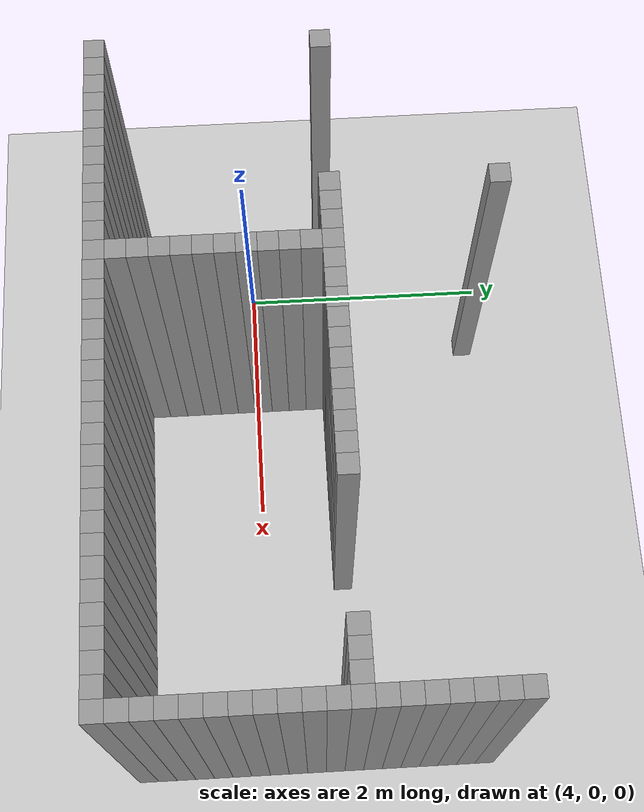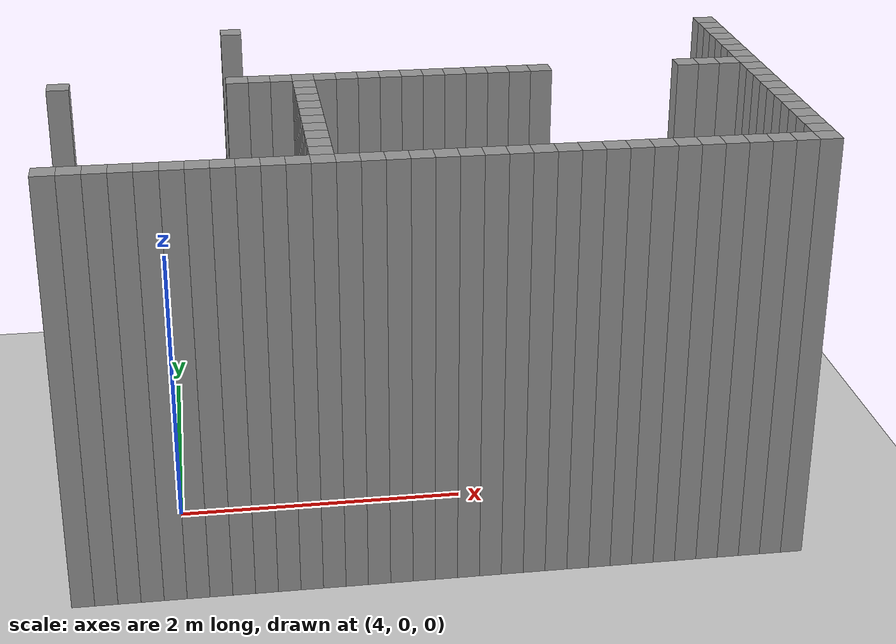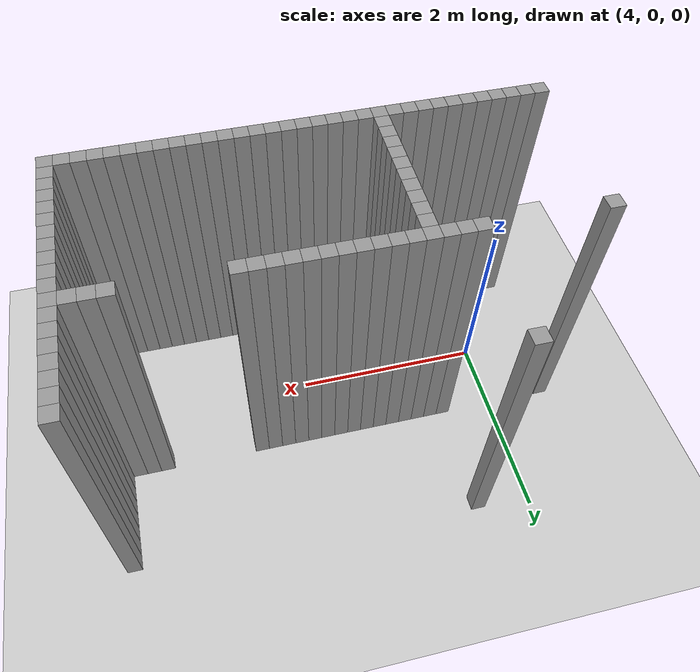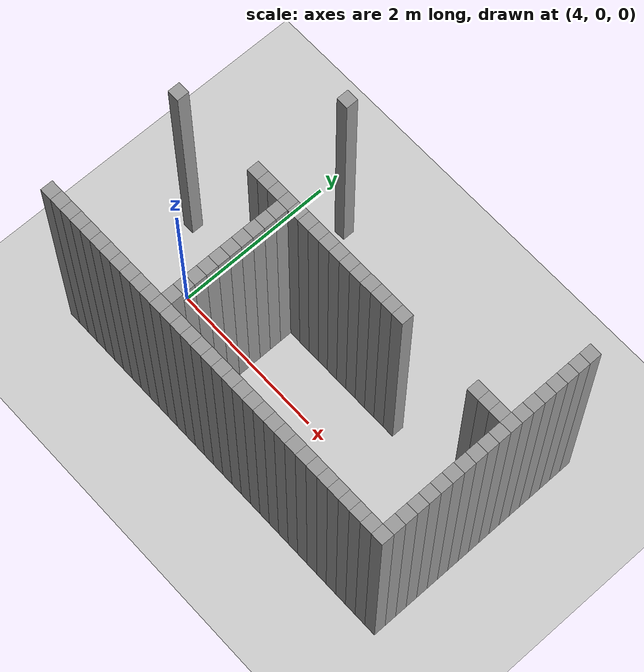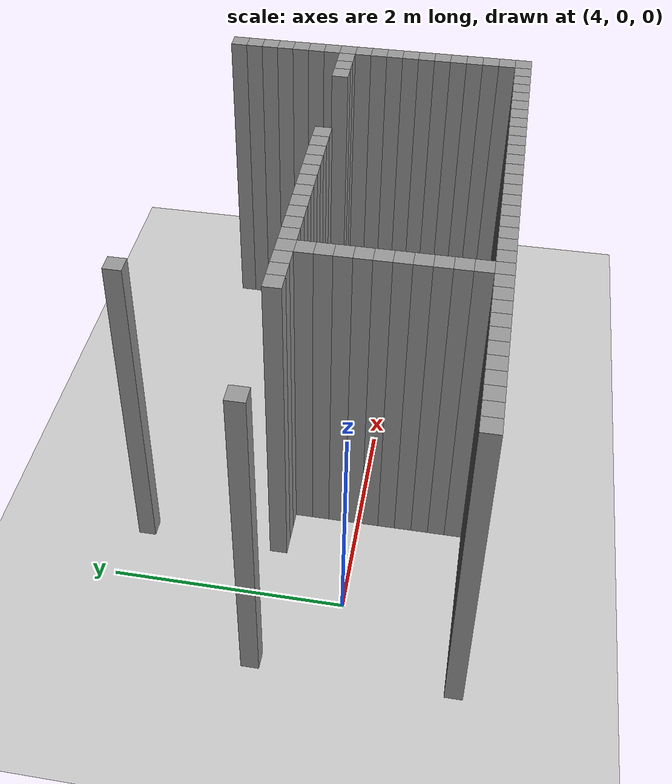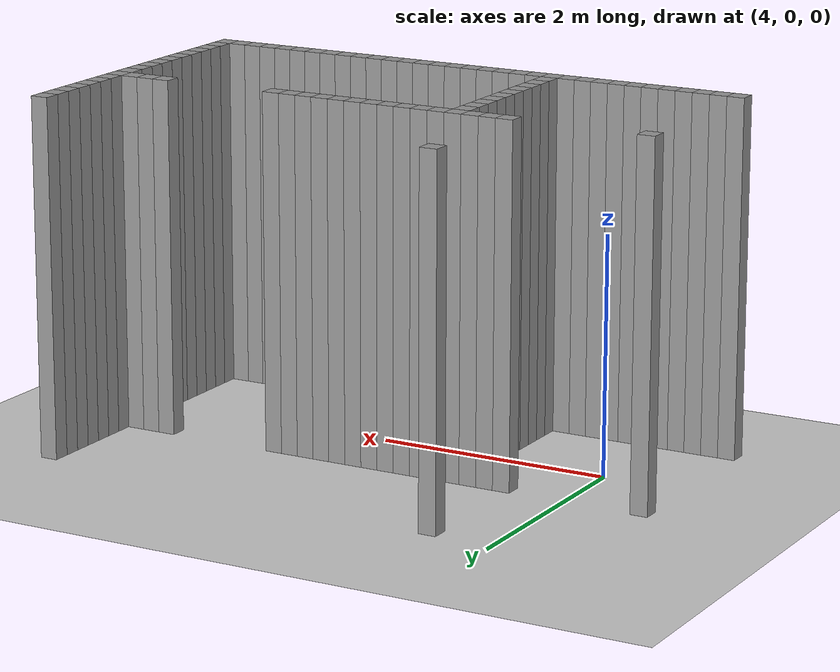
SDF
<sdf version="1.7">
 <world name="default">
  <model name="ground_plane">
   <static>1</static>
   <link name="link">
    <collision name="collision">
     <geometry><plane><normal>0 0 1</normal><size>100 100</size></plane></geometry>
     <surface>
      <contact><collide_bitmask>65535</collide_bitmask></contact>
      <friction><ode><mu>100</mu><mu2>50</mu2></ode></friction>
     </surface>
    </collision>
    <visual name="visual">
     <cast_shadows>0</cast_shadows>
     <geometry><plane><normal>0 0 1</normal><size>100 100</size></plane></geometry>
     <material>
      <script><uri>file://media/materials/scripts/gazebo.material</uri><name>Gazebo/Grey</name></script>
     </material>
    </visual>
   </link>
  </model>
  <model name="image45004">
   <pose>-1 -1 0 0 -0 0</pose>
   <link name="Wall_242">
    <collision name="Wall_242_Collision">
     <geometry><box><size>0.15 0.15 3</size></box></geometry>
     <pose>0 0 1.5 0 -0 0</pose>
    </collision>
    <visual name="Wall_242_Visual">
     <pose>0 0 1.5 0 -0 0</pose>
     <geometry><box><size>0.15 0.15 3</size></box></geometry>
     <material>
      <script><uri>file://media/materials/scripts/gazebo.material</uri><name>Gazebo/Grey</name></script>
      <ambient>1 1 1 1</ambient>
     </material>
     <meta><layer>0</layer></meta>
    </visual>
    <pose>4.35 0.0 0 0 -0 0</pose>
   </link>
   <link name="Wall_243">
    <collision name="Wall_243_Collision">
     <geometry><box><size>0.15 0.15 3</size></box></geometry>
     <pose>0 0 1.5 0 -0 0</pose>
    </collision>
    <visual name="Wall_243_Visual">
     <pose>0 0 1.5 0 -0 0</pose>
     <geometry><box><size>0.15 0.15 3</size></box></geometry>
     <material>
      <script><uri>file://media/materials/scripts/gazebo.material</uri><name>Gazebo/Grey</name></script>
      <ambient>1 1 1 1</ambient>
     </material>
     <meta><layer>0</layer></meta>
    </visual>
    <pose>4.35 1.65 0 0 -0 0</pose>
   </link>
   <link name="Wall_247">
    <collision name="Wall_247_Collision">
     <geometry><box><size>0.15 0.15 3</size></box></geometry>
     <pose>0 0 1.5 0 -0 0</pose>
    </collision>
    <visual name="Wall_247_Visual">
     <pose>0 0 1.5 0 -0 0</pose>
     <geometry><box><size>0.15 0.15 3</size></box></geometry>
     <material>
      <script><uri>file://media/materials/scripts/gazebo.material</uri><name>Gazebo/Grey</name></script>
      <ambient>1 1 1 1</ambient>
     </material>
     <meta><layer>0</layer></meta>
    </visual>
    <pose>4.5 0.0 0 0 -0 0</pose>
   </link>
   <link name="Wall_251">
    <collision name="Wall_251_Collision">
     <geometry><box><size>0.15 0.15 3</size></box></geometry>
     <pose>0 0 1.5 0 -0 0</pose>
    </collision>
    <visual name="Wall_251_Visual">
     <pose>0 0 1.5 0 -0 0</pose>
     <geometry><box><size>0.15 0.15 3</size></box></geometry>
     <material>
      <script><uri>file://media/materials/scripts/gazebo.material</uri><name>Gazebo/Grey</name></script>
      <ambient>1 1 1 1</ambient>
     </material>
     <meta><layer>0</layer></meta>
    </visual>
    <pose>4.6499999999999995 0.0 0 0 -0 0</pose>
   </link>
   <link name="Wall_254">
    <collision name="Wall_254_Collision">
     <geometry><box><size>0.15 0.15 3</size></box></geometry>
     <pose>0 0 1.5 0 -0 0</pose>
    </collision>
    <visual name="Wall_254_Visual">
     <pose>0 0 1.5 0 -0 0</pose>
     <geometry><box><size>0.15 0.15 3</size></box></geometry>
     <material>
      <script><uri>file://media/materials/scripts/gazebo.material</uri><name>Gazebo/Grey</name></script>
      <ambient>1 1 1 1</ambient>
     </material>
     <meta><layer>0</layer></meta>
    </visual>
    <pose>4.8 0.0 0 0 -0 0</pose>
   </link>
   <link name="Wall_257">
    <collision name="Wall_257_Collision">
     <geometry><box><size>0.15 0.15 3</size></box></geometry>
     <pose>0 0 1.5 0 -0 0</pose>
    </collision>
    <visual name="Wall_257_Visual">
     <pose>0 0 1.5 0 -0 0</pose>
     <geometry><box><size>0.15 0.15 3</size></box></geometry>
     <material>
      <script><uri>file://media/materials/scripts/gazebo.material</uri><name>Gazebo/Grey</name></script>
      <ambient>1 1 1 1</ambient>
     </material>
     <meta><layer>0</layer></meta>
    </visual>
    <pose>4.95 0.0 0 0 -0 0</pose>
   </link>
   <link name="Wall_260">
    <collision name="Wall_260_Collision">
     <geometry><box><size>0.15 0.15 3</size></box></geometry>
     <pose>0 0 1.5 0 -0 0</pose>
    </collision>
    <visual name="Wall_260_Visual">
     <pose>0 0 1.5 0 -0 0</pose>
     <geometry><box><size>0.15 0.15 3</size></box></geometry>
     <material>
      <script><uri>file://media/materials/scripts/gazebo.material</uri><name>Gazebo/Grey</name></script>
      <ambient>1 1 1 1</ambient>
     </material>
     <meta><layer>0</layer></meta>
    </visual>
    <pose>5.1 0.0 0 0 -0 0</pose>
   </link>
   <link name="Wall_263">
    <collision name="Wall_263_Collision">
     <geometry><box><size>0.15 0.15 3</size></box></geometry>
     <pose>0 0 1.5 0 -0 0</pose>
    </collision>
    <visual name="Wall_263_Visual">
     <pose>0 0 1.5 0 -0 0</pose>
     <geometry><box><size>0.15 0.15 3</size></box></geometry>
     <material>
      <script><uri>file://media/materials/scripts/gazebo.material</uri><name>Gazebo/Grey</name></script>
      <ambient>1 1 1 1</ambient>
     </material>
     <meta><layer>0</layer></meta>
    </visual>
    <pose>5.25 0.0 0 0 -0 0</pose>
   </link>
   <link name="Wall_266">
    <collision name="Wall_266_Collision">
     <geometry><box><size>0.15 0.15 3</size></box></geometry>
     <pose>0 0 1.5 0 -0 0</pose>
    </collision>
    <visual name="Wall_266_Visual">
     <pose>0 0 1.5 0 -0 0</pose>
     <geometry><box><size>0.15 0.15 3</size></box></geometry>
     <material>
      <script><uri>file://media/materials/scripts/gazebo.material</uri><name>Gazebo/Grey</name></script>
      <ambient>1 1 1 1</ambient>
     </material>
     <meta><layer>0</layer></meta>
    </visual>
    <pose>5.3999999999999995 0.0 0 0 -0 0</pose>
   </link>
   <link name="Wall_269">
    <collision name="Wall_269_Collision">
     <geometry><box><size>0.15 0.15 3</size></box></geometry>
     <pose>0 0 1.5 0 -0 0</pose>
    </collision>
    <visual name="Wall_269_Visual">
     <pose>0 0 1.5 0 -0 0</pose>
     <geometry><box><size>0.15 0.15 3</size></box></geometry>
     <material>
      <script><uri>file://media/materials/scripts/gazebo.material</uri><name>Gazebo/Grey</name></script>
      <ambient>1 1 1 1</ambient>
     </material>
     <meta><layer>0</layer></meta>
    </visual>
    <pose>5.55 0.0 0 0 -0 0</pose>
   </link>
   <link name="Wall_270">
    <collision name="Wall_270_Collision">
     <geometry><box><size>0.15 0.15 3</size></box></geometry>
     <pose>0 0 1.5 0 -0 0</pose>
    </collision>
    <visual name="Wall_270_Visual">
     <pose>0 0 1.5 0 -0 0</pose>
     <geometry><box><size>0.15 0.15 3</size></box></geometry>
     <material>
      <script><uri>file://media/materials/scripts/gazebo.material</uri><name>Gazebo/Grey</name></script>
      <ambient>1 1 1 1</ambient>
     </material>
     <meta><layer>0</layer></meta>
    </visual>
    <pose>5.55 1.65 0 0 -0 0</pose>
   </link>
   <link name="Wall_271">
    <collision name="Wall_271_Collision">
     <geometry><box><size>0.15 0.15 3</size></box></geometry>
     <pose>0 0 1.5 0 -0 0</pose>
    </collision>
    <visual name="Wall_271_Visual">
     <pose>0 0 1.5 0 -0 0</pose>
     <geometry><box><size>0.15 0.15 3</size></box></geometry>
     <material>
      <script><uri>file://media/materials/scripts/gazebo.material</uri><name>Gazebo/Grey</name></script>
      <ambient>1 1 1 1</ambient>
     </material>
     <meta><layer>0</layer></meta>
    </visual>
    <pose>5.55 2.85 0 0 -0 0</pose>
   </link>
   <link name="Wall_274">
    <collision name="Wall_274_Collision">
     <geometry><box><size>0.15 0.15 3</size></box></geometry>
     <pose>0 0 1.5 0 -0 0</pose>
    </collision>
    <visual name="Wall_274_Visual">
     <pose>0 0 1.5 0 -0 0</pose>
     <geometry><box><size>0.15 0.15 3</size></box></geometry>
     <material>
      <script><uri>file://media/materials/scripts/gazebo.material</uri><name>Gazebo/Grey</name></script>
      <ambient>1 1 1 1</ambient>
     </material>
     <meta><layer>0</layer></meta>
    </visual>
    <pose>5.7 0.0 0 0 -0 0</pose>
   </link>
   <link name="Wall_275">
    <collision name="Wall_275_Collision">
     <geometry><box><size>0.15 0.15 3</size></box></geometry>
     <pose>0 0 1.5 0 -0 0</pose>
    </collision>
    <visual name="Wall_275_Visual">
     <pose>0 0 1.5 0 -0 0</pose>
     <geometry><box><size>0.15 0.15 3</size></box></geometry>
     <material>
      <script><uri>file://media/materials/scripts/gazebo.material</uri><name>Gazebo/Grey</name></script>
      <ambient>1 1 1 1</ambient>
     </material>
     <meta><layer>0</layer></meta>
    </visual>
    <pose>5.7 1.65 0 0 -0 0</pose>
   </link>
   <link name="Wall_280">
    <collision name="Wall_280_Collision">
     <geometry><box><size>0.15 0.15 3</size></box></geometry>
     <pose>0 0 1.5 0 -0 0</pose>
    </collision>
    <visual name="Wall_280_Visual">
     <pose>0 0 1.5 0 -0 0</pose>
     <geometry><box><size>0.15 0.15 3</size></box></geometry>
     <material>
      <script><uri>file://media/materials/scripts/gazebo.material</uri><name>Gazebo/Grey</name></script>
      <ambient>1 1 1 1</ambient>
     </material>
     <meta><layer>0</layer></meta>
    </visual>
    <pose>5.85 0.0 0 0 -0 0</pose>
   </link>
   <link name="Wall_281">
    <collision name="Wall_281_Collision">
     <geometry><box><size>0.15 0.15 3</size></box></geometry>
     <pose>0 0 1.5 0 -0 0</pose>
    </collision>
    <visual name="Wall_281_Visual">
     <pose>0 0 1.5 0 -0 0</pose>
     <geometry><box><size>0.15 0.15 3</size></box></geometry>
     <material>
      <script><uri>file://media/materials/scripts/gazebo.material</uri><name>Gazebo/Grey</name></script>
      <ambient>1 1 1 1</ambient>
     </material>
     <meta><layer>0</layer></meta>
    </visual>
    <pose>5.85 1.65 0 0 -0 0</pose>
   </link>
   <link name="Wall_295">
    <collision name="Wall_295_Collision">
     <geometry><box><size>0.15 0.15 3</size></box></geometry>
     <pose>0 0 1.5 0 -0 0</pose>
    </collision>
    <visual name="Wall_295_Visual">
     <pose>0 0 1.5 0 -0 0</pose>
     <geometry><box><size>0.15 0.15 3</size></box></geometry>
     <material>
      <script><uri>file://media/materials/scripts/gazebo.material</uri><name>Gazebo/Grey</name></script>
      <ambient>1 1 1 1</ambient>
     </material>
     <meta><layer>0</layer></meta>
    </visual>
    <pose>6.0 0.0 0 0 -0 0</pose>
   </link>
   <link name="Wall_296">
    <collision name="Wall_296_Collision">
     <geometry><box><size>0.15 0.15 3</size></box></geometry>
     <pose>0 0 1.5 0 -0 0</pose>
    </collision>
    <visual name="Wall_296_Visual">
     <pose>0 0 1.5 0 -0 0</pose>
     <geometry><box><size>0.15 0.15 3</size></box></geometry>
     <material>
      <script><uri>file://media/materials/scripts/gazebo.material</uri><name>Gazebo/Grey</name></script>
      <ambient>1 1 1 1</ambient>
     </material>
     <meta><layer>0</layer></meta>
    </visual>
    <pose>6.0 0.15 0 0 -0 0</pose>
   </link>
   <link name="Wall_297">
    <collision name="Wall_297_Collision">
     <geometry><box><size>0.15 0.15 3</size></box></geometry>
     <pose>0 0 1.5 0 -0 0</pose>
    </collision>
    <visual name="Wall_297_Visual">
     <pose>0 0 1.5 0 -0 0</pose>
     <geometry><box><size>0.15 0.15 3</size></box></geometry>
     <material>
      <script><uri>file://media/materials/scripts/gazebo.material</uri><name>Gazebo/Grey</name></script>
      <ambient>1 1 1 1</ambient>
     </material>
     <meta><layer>0</layer></meta>
    </visual>
    <pose>6.0 0.3 0 0 -0 0</pose>
   </link>
   <link name="Wall_298">
    <collision name="Wall_298_Collision">
     <geometry><box><size>0.15 0.15 3</size></box></geometry>
     <pose>0 0 1.5 0 -0 0</pose>
    </collision>
    <visual name="Wall_298_Visual">
     <pose>0 0 1.5 0 -0 0</pose>
     <geometry><box><size>0.15 0.15 3</size></box></geometry>
     <material>
      <script><uri>file://media/materials/scripts/gazebo.material</uri><name>Gazebo/Grey</name></script>
      <ambient>1 1 1 1</ambient>
     </material>
     <meta><layer>0</layer></meta>
    </visual>
    <pose>6.0 0.44999999999999996 0 0 -0 0</pose>
   </link>
   <link name="Wall_299">
    <collision name="Wall_299_Collision">
     <geometry><box><size>0.15 0.15 3</size></box></geometry>
     <pose>0 0 1.5 0 -0 0</pose>
    </collision>
    <visual name="Wall_299_Visual">
     <pose>0 0 1.5 0 -0 0</pose>
     <geometry><box><size>0.15 0.15 3</size></box></geometry>
     <material>
      <script><uri>file://media/materials/scripts/gazebo.material</uri><name>Gazebo/Grey</name></script>
      <ambient>1 1 1 1</ambient>
     </material>
     <meta><layer>0</layer></meta>
    </visual>
    <pose>6.0 0.6 0 0 -0 0</pose>
   </link>
   <link name="Wall_300">
    <collision name="Wall_300_Collision">
     <geometry><box><size>0.15 0.15 3</size></box></geometry>
     <pose>0 0 1.5 0 -0 0</pose>
    </collision>
    <visual name="Wall_300_Visual">
     <pose>0 0 1.5 0 -0 0</pose>
     <geometry><box><size>0.15 0.15 3</size></box></geometry>
     <material>
      <script><uri>file://media/materials/scripts/gazebo.material</uri><name>Gazebo/Grey</name></script>
      <ambient>1 1 1 1</ambient>
     </material>
     <meta><layer>0</layer></meta>
    </visual>
    <pose>6.0 0.75 0 0 -0 0</pose>
   </link>
   <link name="Wall_301">
    <collision name="Wall_301_Collision">
     <geometry><box><size>0.15 0.15 3</size></box></geometry>
     <pose>0 0 1.5 0 -0 0</pose>
    </collision>
    <visual name="Wall_301_Visual">
     <pose>0 0 1.5 0 -0 0</pose>
     <geometry><box><size>0.15 0.15 3</size></box></geometry>
     <material>
      <script><uri>file://media/materials/scripts/gazebo.material</uri><name>Gazebo/Grey</name></script>
      <ambient>1 1 1 1</ambient>
     </material>
     <meta><layer>0</layer></meta>
    </visual>
    <pose>6.0 0.8999999999999999 0 0 -0 0</pose>
   </link>
   <link name="Wall_302">
    <collision name="Wall_302_Collision">
     <geometry><box><size>0.15 0.15 3</size></box></geometry>
     <pose>0 0 1.5 0 -0 0</pose>
    </collision>
    <visual name="Wall_302_Visual">
     <pose>0 0 1.5 0 -0 0</pose>
     <geometry><box><size>0.15 0.15 3</size></box></geometry>
     <material>
      <script><uri>file://media/materials/scripts/gazebo.material</uri><name>Gazebo/Grey</name></script>
      <ambient>1 1 1 1</ambient>
     </material>
     <meta><layer>0</layer></meta>
    </visual>
    <pose>6.0 1.05 0 0 -0 0</pose>
   </link>
   <link name="Wall_303">
    <collision name="Wall_303_Collision">
     <geometry><box><size>0.15 0.15 3</size></box></geometry>
     <pose>0 0 1.5 0 -0 0</pose>
    </collision>
    <visual name="Wall_303_Visual">
     <pose>0 0 1.5 0 -0 0</pose>
     <geometry><box><size>0.15 0.15 3</size></box></geometry>
     <material>
      <script><uri>file://media/materials/scripts/gazebo.material</uri><name>Gazebo/Grey</name></script>
      <ambient>1 1 1 1</ambient>
     </material>
     <meta><layer>0</layer></meta>
    </visual>
    <pose>6.0 1.2 0 0 -0 0</pose>
   </link>
   <link name="Wall_304">
    <collision name="Wall_304_Collision">
     <geometry><box><size>0.15 0.15 3</size></box></geometry>
     <pose>0 0 1.5 0 -0 0</pose>
    </collision>
    <visual name="Wall_304_Visual">
     <pose>0 0 1.5 0 -0 0</pose>
     <geometry><box><size>0.15 0.15 3</size></box></geometry>
     <material>
      <script><uri>file://media/materials/scripts/gazebo.material</uri><name>Gazebo/Grey</name></script>
      <ambient>1 1 1 1</ambient>
     </material>
     <meta><layer>0</layer></meta>
    </visual>
    <pose>6.0 1.3499999999999999 0 0 -0 0</pose>
   </link>
   <link name="Wall_305">
    <collision name="Wall_305_Collision">
     <geometry><box><size>0.15 0.15 3</size></box></geometry>
     <pose>0 0 1.5 0 -0 0</pose>
    </collision>
    <visual name="Wall_305_Visual">
     <pose>0 0 1.5 0 -0 0</pose>
     <geometry><box><size>0.15 0.15 3</size></box></geometry>
     <material>
      <script><uri>file://media/materials/scripts/gazebo.material</uri><name>Gazebo/Grey</name></script>
      <ambient>1 1 1 1</ambient>
     </material>
     <meta><layer>0</layer></meta>
    </visual>
    <pose>6.0 1.5 0 0 -0 0</pose>
   </link>
   <link name="Wall_306">
    <collision name="Wall_306_Collision">
     <geometry><box><size>0.15 0.15 3</size></box></geometry>
     <pose>0 0 1.5 0 -0 0</pose>
    </collision>
    <visual name="Wall_306_Visual">
     <pose>0 0 1.5 0 -0 0</pose>
     <geometry><box><size>0.15 0.15 3</size></box></geometry>
     <material>
      <script><uri>file://media/materials/scripts/gazebo.material</uri><name>Gazebo/Grey</name></script>
      <ambient>1 1 1 1</ambient>
     </material>
     <meta><layer>0</layer></meta>
    </visual>
    <pose>6.0 1.65 0 0 -0 0</pose>
   </link>
   <link name="Wall_325">
    <collision name="Wall_325_Collision">
     <geometry><box><size>0.15 0.15 3</size></box></geometry>
     <pose>0 0 1.5 0 -0 0</pose>
    </collision>
    <visual name="Wall_325_Visual">
     <pose>0 0 1.5 0 -0 0</pose>
     <geometry><box><size>0.15 0.15 3</size></box></geometry>
     <material>
      <script><uri>file://media/materials/scripts/gazebo.material</uri><name>Gazebo/Grey</name></script>
      <ambient>1 1 1 1</ambient>
     </material>
     <meta><layer>0</layer></meta>
    </visual>
    <pose>6.1499999999999995 0.0 0 0 -0 0</pose>
   </link>
   <link name="Wall_326">
    <collision name="Wall_326_Collision">
     <geometry><box><size>0.15 0.15 3</size></box></geometry>
     <pose>0 0 1.5 0 -0 0</pose>
    </collision>
    <visual name="Wall_326_Visual">
     <pose>0 0 1.5 0 -0 0</pose>
     <geometry><box><size>0.15 0.15 3</size></box></geometry>
     <material>
      <script><uri>file://media/materials/scripts/gazebo.material</uri><name>Gazebo/Grey</name></script>
      <ambient>1 1 1 1</ambient>
     </material>
     <meta><layer>0</layer></meta>
    </visual>
    <pose>6.1499999999999995 1.65 0 0 -0 0</pose>
   </link>
   <link name="Wall_329">
    <collision name="Wall_329_Collision">
     <geometry><box><size>0.15 0.15 3</size></box></geometry>
     <pose>0 0 1.5 0 -0 0</pose>
    </collision>
    <visual name="Wall_329_Visual">
     <pose>0 0 1.5 0 -0 0</pose>
     <geometry><box><size>0.15 0.15 3</size></box></geometry>
     <material>
      <script><uri>file://media/materials/scripts/gazebo.material</uri><name>Gazebo/Grey</name></script>
      <ambient>1 1 1 1</ambient>
     </material>
     <meta><layer>0</layer></meta>
    </visual>
    <pose>6.3 0.0 0 0 -0 0</pose>
   </link>
   <link name="Wall_330">
    <collision name="Wall_330_Collision">
     <geometry><box><size>0.15 0.15 3</size></box></geometry>
     <pose>0 0 1.5 0 -0 0</pose>
    </collision>
    <visual name="Wall_330_Visual">
     <pose>0 0 1.5 0 -0 0</pose>
     <geometry><box><size>0.15 0.15 3</size></box></geometry>
     <material>
      <script><uri>file://media/materials/scripts/gazebo.material</uri><name>Gazebo/Grey</name></script>
      <ambient>1 1 1 1</ambient>
     </material>
     <meta><layer>0</layer></meta>
    </visual>
    <pose>6.3 1.65 0 0 -0 0</pose>
   </link>
   <link name="Wall_333">
    <collision name="Wall_333_Collision">
     <geometry><box><size>0.15 0.15 3</size></box></geometry>
     <pose>0 0 1.5 0 -0 0</pose>
    </collision>
    <visual name="Wall_333_Visual">
     <pose>0 0 1.5 0 -0 0</pose>
     <geometry><box><size>0.15 0.15 3</size></box></geometry>
     <material>
      <script><uri>file://media/materials/scripts/gazebo.material</uri><name>Gazebo/Grey</name></script>
      <ambient>1 1 1 1</ambient>
     </material>
     <meta><layer>0</layer></meta>
    </visual>
    <pose>6.45 0.0 0 0 -0 0</pose>
   </link>
   <link name="Wall_334">
    <collision name="Wall_334_Collision">
     <geometry><box><size>0.15 0.15 3</size></box></geometry>
     <pose>0 0 1.5 0 -0 0</pose>
    </collision>
    <visual name="Wall_334_Visual">
     <pose>0 0 1.5 0 -0 0</pose>
     <geometry><box><size>0.15 0.15 3</size></box></geometry>
     <material>
      <script><uri>file://media/materials/scripts/gazebo.material</uri><name>Gazebo/Grey</name></script>
      <ambient>1 1 1 1</ambient>
     </material>
     <meta><layer>0</layer></meta>
    </visual>
    <pose>6.45 1.65 0 0 -0 0</pose>
   </link>
   <link name="Wall_337">
    <collision name="Wall_337_Collision">
     <geometry><box><size>0.15 0.15 3</size></box></geometry>
     <pose>0 0 1.5 0 -0 0</pose>
    </collision>
    <visual name="Wall_337_Visual">
     <pose>0 0 1.5 0 -0 0</pose>
     <geometry><box><size>0.15 0.15 3</size></box></geometry>
     <material>
      <script><uri>file://media/materials/scripts/gazebo.material</uri><name>Gazebo/Grey</name></script>
      <ambient>1 1 1 1</ambient>
     </material>
     <meta><layer>0</layer></meta>
    </visual>
    <pose>6.6 0.0 0 0 -0 0</pose>
   </link>
   <link name="Wall_338">
    <collision name="Wall_338_Collision">
     <geometry><box><size>0.15 0.15 3</size></box></geometry>
     <pose>0 0 1.5 0 -0 0</pose>
    </collision>
    <visual name="Wall_338_Visual">
     <pose>0 0 1.5 0 -0 0</pose>
     <geometry><box><size>0.15 0.15 3</size></box></geometry>
     <material>
      <script><uri>file://media/materials/scripts/gazebo.material</uri><name>Gazebo/Grey</name></script>
      <ambient>1 1 1 1</ambient>
     </material>
     <meta><layer>0</layer></meta>
    </visual>
    <pose>6.6 1.65 0 0 -0 0</pose>
   </link>
   <link name="Wall_341">
    <collision name="Wall_341_Collision">
     <geometry><box><size>0.15 0.15 3</size></box></geometry>
     <pose>0 0 1.5 0 -0 0</pose>
    </collision>
    <visual name="Wall_341_Visual">
     <pose>0 0 1.5 0 -0 0</pose>
     <geometry><box><size>0.15 0.15 3</size></box></geometry>
     <material>
      <script><uri>file://media/materials/scripts/gazebo.material</uri><name>Gazebo/Grey</name></script>
      <ambient>1 1 1 1</ambient>
     </material>
     <meta><layer>0</layer></meta>
    </visual>
    <pose>6.75 0.0 0 0 -0 0</pose>
   </link>
   <link name="Wall_342">
    <collision name="Wall_342_Collision">
     <geometry><box><size>0.15 0.15 3</size></box></geometry>
     <pose>0 0 1.5 0 -0 0</pose>
    </collision>
    <visual name="Wall_342_Visual">
     <pose>0 0 1.5 0 -0 0</pose>
     <geometry><box><size>0.15 0.15 3</size></box></geometry>
     <material>
      <script><uri>file://media/materials/scripts/gazebo.material</uri><name>Gazebo/Grey</name></script>
      <ambient>1 1 1 1</ambient>
     </material>
     <meta><layer>0</layer></meta>
    </visual>
    <pose>6.75 1.65 0 0 -0 0</pose>
   </link>
   <link name="Wall_345">
    <collision name="Wall_345_Collision">
     <geometry><box><size>0.15 0.15 3</size></box></geometry>
     <pose>0 0 1.5 0 -0 0</pose>
    </collision>
    <visual name="Wall_345_Visual">
     <pose>0 0 1.5 0 -0 0</pose>
     <geometry><box><size>0.15 0.15 3</size></box></geometry>
     <material>
      <script><uri>file://media/materials/scripts/gazebo.material</uri><name>Gazebo/Grey</name></script>
      <ambient>1 1 1 1</ambient>
     </material>
     <meta><layer>0</layer></meta>
    </visual>
    <pose>6.8999999999999995 0.0 0 0 -0 0</pose>
   </link>
   <link name="Wall_346">
    <collision name="Wall_346_Collision">
     <geometry><box><size>0.15 0.15 3</size></box></geometry>
     <pose>0 0 1.5 0 -0 0</pose>
    </collision>
    <visual name="Wall_346_Visual">
     <pose>0 0 1.5 0 -0 0</pose>
     <geometry><box><size>0.15 0.15 3</size></box></geometry>
     <material>
      <script><uri>file://media/materials/scripts/gazebo.material</uri><name>Gazebo/Grey</name></script>
      <ambient>1 1 1 1</ambient>
     </material>
     <meta><layer>0</layer></meta>
    </visual>
    <pose>6.8999999999999995 1.65 0 0 -0 0</pose>
   </link>
   <link name="Wall_352">
    <collision name="Wall_352_Collision">
     <geometry><box><size>0.15 0.15 3</size></box></geometry>
     <pose>0 0 1.5 0 -0 0</pose>
    </collision>
    <visual name="Wall_352_Visual">
     <pose>0 0 1.5 0 -0 0</pose>
     <geometry><box><size>0.15 0.15 3</size></box></geometry>
     <material>
      <script><uri>file://media/materials/scripts/gazebo.material</uri><name>Gazebo/Grey</name></script>
      <ambient>1 1 1 1</ambient>
     </material>
     <meta><layer>0</layer></meta>
    </visual>
    <pose>7.05 0.0 0 0 -0 0</pose>
   </link>
   <link name="Wall_353">
    <collision name="Wall_353_Collision">
     <geometry><box><size>0.15 0.15 3</size></box></geometry>
     <pose>0 0 1.5 0 -0 0</pose>
    </collision>
    <visual name="Wall_353_Visual">
     <pose>0 0 1.5 0 -0 0</pose>
     <geometry><box><size>0.15 0.15 3</size></box></geometry>
     <material>
      <script><uri>file://media/materials/scripts/gazebo.material</uri><name>Gazebo/Grey</name></script>
      <ambient>1 1 1 1</ambient>
     </material>
     <meta><layer>0</layer></meta>
    </visual>
    <pose>7.05 1.65 0 0 -0 0</pose>
   </link>
   <link name="Wall_357">
    <collision name="Wall_357_Collision">
     <geometry><box><size>0.15 0.15 3</size></box></geometry>
     <pose>0 0 1.5 0 -0 0</pose>
    </collision>
    <visual name="Wall_357_Visual">
     <pose>0 0 1.5 0 -0 0</pose>
     <geometry><box><size>0.15 0.15 3</size></box></geometry>
     <material>
      <script><uri>file://media/materials/scripts/gazebo.material</uri><name>Gazebo/Grey</name></script>
      <ambient>1 1 1 1</ambient>
     </material>
     <meta><layer>0</layer></meta>
    </visual>
    <pose>7.199999999999999 0.0 0 0 -0 0</pose>
   </link>
   <link name="Wall_358">
    <collision name="Wall_358_Collision">
     <geometry><box><size>0.15 0.15 3</size></box></geometry>
     <pose>0 0 1.5 0 -0 0</pose>
    </collision>
    <visual name="Wall_358_Visual">
     <pose>0 0 1.5 0 -0 0</pose>
     <geometry><box><size>0.15 0.15 3</size></box></geometry>
     <material>
      <script><uri>file://media/materials/scripts/gazebo.material</uri><name>Gazebo/Grey</name></script>
      <ambient>1 1 1 1</ambient>
     </material>
     <meta><layer>0</layer></meta>
    </visual>
    <pose>7.199999999999999 1.65 0 0 -0 0</pose>
   </link>
   <link name="Wall_362">
    <collision name="Wall_362_Collision">
     <geometry><box><size>0.15 0.15 3</size></box></geometry>
     <pose>0 0 1.5 0 -0 0</pose>
    </collision>
    <visual name="Wall_362_Visual">
     <pose>0 0 1.5 0 -0 0</pose>
     <geometry><box><size>0.15 0.15 3</size></box></geometry>
     <material>
      <script><uri>file://media/materials/scripts/gazebo.material</uri><name>Gazebo/Grey</name></script>
      <ambient>1 1 1 1</ambient>
     </material>
     <meta><layer>0</layer></meta>
    </visual>
    <pose>7.35 0.0 0 0 -0 0</pose>
   </link>
   <link name="Wall_363">
    <collision name="Wall_363_Collision">
     <geometry><box><size>0.15 0.15 3</size></box></geometry>
     <pose>0 0 1.5 0 -0 0</pose>
    </collision>
    <visual name="Wall_363_Visual">
     <pose>0 0 1.5 0 -0 0</pose>
     <geometry><box><size>0.15 0.15 3</size></box></geometry>
     <material>
      <script><uri>file://media/materials/scripts/gazebo.material</uri><name>Gazebo/Grey</name></script>
      <ambient>1 1 1 1</ambient>
     </material>
     <meta><layer>0</layer></meta>
    </visual>
    <pose>7.35 1.65 0 0 -0 0</pose>
   </link>
   <link name="Wall_367">
    <collision name="Wall_367_Collision">
     <geometry><box><size>0.15 0.15 3</size></box></geometry>
     <pose>0 0 1.5 0 -0 0</pose>
    </collision>
    <visual name="Wall_367_Visual">
     <pose>0 0 1.5 0 -0 0</pose>
     <geometry><box><size>0.15 0.15 3</size></box></geometry>
     <material>
      <script><uri>file://media/materials/scripts/gazebo.material</uri><name>Gazebo/Grey</name></script>
      <ambient>1 1 1 1</ambient>
     </material>
     <meta><layer>0</layer></meta>
    </visual>
    <pose>7.5 0.0 0 0 -0 0</pose>
   </link>
   <link name="Wall_368">
    <collision name="Wall_368_Collision">
     <geometry><box><size>0.15 0.15 3</size></box></geometry>
     <pose>0 0 1.5 0 -0 0</pose>
    </collision>
    <visual name="Wall_368_Visual">
     <pose>0 0 1.5 0 -0 0</pose>
     <geometry><box><size>0.15 0.15 3</size></box></geometry>
     <material>
      <script><uri>file://media/materials/scripts/gazebo.material</uri><name>Gazebo/Grey</name></script>
      <ambient>1 1 1 1</ambient>
     </material>
     <meta><layer>0</layer></meta>
    </visual>
    <pose>7.5 1.65 0 0 -0 0</pose>
   </link>
   <link name="Wall_372">
    <collision name="Wall_372_Collision">
     <geometry><box><size>0.15 0.15 3</size></box></geometry>
     <pose>0 0 1.5 0 -0 0</pose>
    </collision>
    <visual name="Wall_372_Visual">
     <pose>0 0 1.5 0 -0 0</pose>
     <geometry><box><size>0.15 0.15 3</size></box></geometry>
     <material>
      <script><uri>file://media/materials/scripts/gazebo.material</uri><name>Gazebo/Grey</name></script>
      <ambient>1 1 1 1</ambient>
     </material>
     <meta><layer>0</layer></meta>
    </visual>
    <pose>7.6499999999999995 0.0 0 0 -0 0</pose>
   </link>
   <link name="Wall_373">
    <collision name="Wall_373_Collision">
     <geometry><box><size>0.15 0.15 3</size></box></geometry>
     <pose>0 0 1.5 0 -0 0</pose>
    </collision>
    <visual name="Wall_373_Visual">
     <pose>0 0 1.5 0 -0 0</pose>
     <geometry><box><size>0.15 0.15 3</size></box></geometry>
     <material>
      <script><uri>file://media/materials/scripts/gazebo.material</uri><name>Gazebo/Grey</name></script>
      <ambient>1 1 1 1</ambient>
     </material>
     <meta><layer>0</layer></meta>
    </visual>
    <pose>7.6499999999999995 1.65 0 0 -0 0</pose>
   </link>
   <link name="Wall_377">
    <collision name="Wall_377_Collision">
     <geometry><box><size>0.15 0.15 3</size></box></geometry>
     <pose>0 0 1.5 0 -0 0</pose>
    </collision>
    <visual name="Wall_377_Visual">
     <pose>0 0 1.5 0 -0 0</pose>
     <geometry><box><size>0.15 0.15 3</size></box></geometry>
     <material>
      <script><uri>file://media/materials/scripts/gazebo.material</uri><name>Gazebo/Grey</name></script>
      <ambient>1 1 1 1</ambient>
     </material>
     <meta><layer>0</layer></meta>
    </visual>
    <pose>7.8 0.0 0 0 -0 0</pose>
   </link>
   <link name="Wall_381">
    <collision name="Wall_381_Collision">
     <geometry><box><size>0.15 0.15 3</size></box></geometry>
     <pose>0 0 1.5 0 -0 0</pose>
    </collision>
    <visual name="Wall_381_Visual">
     <pose>0 0 1.5 0 -0 0</pose>
     <geometry><box><size>0.15 0.15 3</size></box></geometry>
     <material>
      <script><uri>file://media/materials/scripts/gazebo.material</uri><name>Gazebo/Grey</name></script>
      <ambient>1 1 1 1</ambient>
     </material>
     <meta><layer>0</layer></meta>
    </visual>
    <pose>7.949999999999999 0.0 0 0 -0 0</pose>
   </link>
   <link name="Wall_385">
    <collision name="Wall_385_Collision">
     <geometry><box><size>0.15 0.15 3</size></box></geometry>
     <pose>0 0 1.5 0 -0 0</pose>
    </collision>
    <visual name="Wall_385_Visual">
     <pose>0 0 1.5 0 -0 0</pose>
     <geometry><box><size>0.15 0.15 3</size></box></geometry>
     <material>
      <script><uri>file://media/materials/scripts/gazebo.material</uri><name>Gazebo/Grey</name></script>
      <ambient>1 1 1 1</ambient>
     </material>
     <meta><layer>0</layer></meta>
    </visual>
    <pose>8.1 0.0 0 0 -0 0</pose>
   </link>
   <link name="Wall_390">
    <collision name="Wall_390_Collision">
     <geometry><box><size>0.15 0.15 3</size></box></geometry>
     <pose>0 0 1.5 0 -0 0</pose>
    </collision>
    <visual name="Wall_390_Visual">
     <pose>0 0 1.5 0 -0 0</pose>
     <geometry><box><size>0.15 0.15 3</size></box></geometry>
     <material>
      <script><uri>file://media/materials/scripts/gazebo.material</uri><name>Gazebo/Grey</name></script>
      <ambient>1 1 1 1</ambient>
     </material>
     <meta><layer>0</layer></meta>
    </visual>
    <pose>8.25 0.0 0 0 -0 0</pose>
   </link>
   <link name="Wall_395">
    <collision name="Wall_395_Collision">
     <geometry><box><size>0.15 0.15 3</size></box></geometry>
     <pose>0 0 1.5 0 -0 0</pose>
    </collision>
    <visual name="Wall_395_Visual">
     <pose>0 0 1.5 0 -0 0</pose>
     <geometry><box><size>0.15 0.15 3</size></box></geometry>
     <material>
      <script><uri>file://media/materials/scripts/gazebo.material</uri><name>Gazebo/Grey</name></script>
      <ambient>1 1 1 1</ambient>
     </material>
     <meta><layer>0</layer></meta>
    </visual>
    <pose>8.4 0.0 0 0 -0 0</pose>
   </link>
   <link name="Wall_400">
    <collision name="Wall_400_Collision">
     <geometry><box><size>0.15 0.15 3</size></box></geometry>
     <pose>0 0 1.5 0 -0 0</pose>
    </collision>
    <visual name="Wall_400_Visual">
     <pose>0 0 1.5 0 -0 0</pose>
     <geometry><box><size>0.15 0.15 3</size></box></geometry>
     <material>
      <script><uri>file://media/materials/scripts/gazebo.material</uri><name>Gazebo/Grey</name></script>
      <ambient>1 1 1 1</ambient>
     </material>
     <meta><layer>0</layer></meta>
    </visual>
    <pose>8.549999999999999 0.0 0 0 -0 0</pose>
   </link>
   <link name="Wall_405">
    <collision name="Wall_405_Collision">
     <geometry><box><size>0.15 0.15 3</size></box></geometry>
     <pose>0 0 1.5 0 -0 0</pose>
    </collision>
    <visual name="Wall_405_Visual">
     <pose>0 0 1.5 0 -0 0</pose>
     <geometry><box><size>0.15 0.15 3</size></box></geometry>
     <material>
      <script><uri>file://media/materials/scripts/gazebo.material</uri><name>Gazebo/Grey</name></script>
      <ambient>1 1 1 1</ambient>
     </material>
     <meta><layer>0</layer></meta>
    </visual>
    <pose>8.7 0.0 0 0 -0 0</pose>
   </link>
   <link name="Wall_406">
    <collision name="Wall_406_Collision">
     <geometry><box><size>0.15 0.15 3</size></box></geometry>
     <pose>0 0 1.5 0 -0 0</pose>
    </collision>
    <visual name="Wall_406_Visual">
     <pose>0 0 1.5 0 -0 0</pose>
     <geometry><box><size>0.15 0.15 3</size></box></geometry>
     <material>
      <script><uri>file://media/materials/scripts/gazebo.material</uri><name>Gazebo/Grey</name></script>
      <ambient>1 1 1 1</ambient>
     </material>
     <meta><layer>0</layer></meta>
    </visual>
    <pose>8.7 1.65 0 0 -0 0</pose>
   </link>
   <link name="Wall_411">
    <collision name="Wall_411_Collision">
     <geometry><box><size>0.15 0.15 3</size></box></geometry>
     <pose>0 0 1.5 0 -0 0</pose>
    </collision>
    <visual name="Wall_411_Visual">
     <pose>0 0 1.5 0 -0 0</pose>
     <geometry><box><size>0.15 0.15 3</size></box></geometry>
     <material>
      <script><uri>file://media/materials/scripts/gazebo.material</uri><name>Gazebo/Grey</name></script>
      <ambient>1 1 1 1</ambient>
     </material>
     <meta><layer>0</layer></meta>
    </visual>
    <pose>8.85 0.0 0 0 -0 0</pose>
   </link>
   <link name="Wall_412">
    <collision name="Wall_412_Collision">
     <geometry><box><size>0.15 0.15 3</size></box></geometry>
     <pose>0 0 1.5 0 -0 0</pose>
    </collision>
    <visual name="Wall_412_Visual">
     <pose>0 0 1.5 0 -0 0</pose>
     <geometry><box><size>0.15 0.15 3</size></box></geometry>
     <material>
      <script><uri>file://media/materials/scripts/gazebo.material</uri><name>Gazebo/Grey</name></script>
      <ambient>1 1 1 1</ambient>
     </material>
     <meta><layer>0</layer></meta>
    </visual>
    <pose>8.85 1.65 0 0 -0 0</pose>
   </link>
   <link name="Wall_417">
    <collision name="Wall_417_Collision">
     <geometry><box><size>0.15 0.15 3</size></box></geometry>
     <pose>0 0 1.5 0 -0 0</pose>
    </collision>
    <visual name="Wall_417_Visual">
     <pose>0 0 1.5 0 -0 0</pose>
     <geometry><box><size>0.15 0.15 3</size></box></geometry>
     <material>
      <script><uri>file://media/materials/scripts/gazebo.material</uri><name>Gazebo/Grey</name></script>
      <ambient>1 1 1 1</ambient>
     </material>
     <meta><layer>0</layer></meta>
    </visual>
    <pose>9.0 0.0 0 0 -0 0</pose>
   </link>
   <link name="Wall_418">
    <collision name="Wall_418_Collision">
     <geometry><box><size>0.15 0.15 3</size></box></geometry>
     <pose>0 0 1.5 0 -0 0</pose>
    </collision>
    <visual name="Wall_418_Visual">
     <pose>0 0 1.5 0 -0 0</pose>
     <geometry><box><size>0.15 0.15 3</size></box></geometry>
     <material>
      <script><uri>file://media/materials/scripts/gazebo.material</uri><name>Gazebo/Grey</name></script>
      <ambient>1 1 1 1</ambient>
     </material>
     <meta><layer>0</layer></meta>
    </visual>
    <pose>9.0 1.65 0 0 -0 0</pose>
   </link>
   <link name="Wall_423">
    <collision name="Wall_423_Collision">
     <geometry><box><size>0.15 0.15 3</size></box></geometry>
     <pose>0 0 1.5 0 -0 0</pose>
    </collision>
    <visual name="Wall_423_Visual">
     <pose>0 0 1.5 0 -0 0</pose>
     <geometry><box><size>0.15 0.15 3</size></box></geometry>
     <material>
      <script><uri>file://media/materials/scripts/gazebo.material</uri><name>Gazebo/Grey</name></script>
      <ambient>1 1 1 1</ambient>
     </material>
     <meta><layer>0</layer></meta>
    </visual>
    <pose>9.15 0.0 0 0 -0 0</pose>
   </link>
   <link name="Wall_424">
    <collision name="Wall_424_Collision">
     <geometry><box><size>0.15 0.15 3</size></box></geometry>
     <pose>0 0 1.5 0 -0 0</pose>
    </collision>
    <visual name="Wall_424_Visual">
     <pose>0 0 1.5 0 -0 0</pose>
     <geometry><box><size>0.15 0.15 3</size></box></geometry>
     <material>
      <script><uri>file://media/materials/scripts/gazebo.material</uri><name>Gazebo/Grey</name></script>
      <ambient>1 1 1 1</ambient>
     </material>
     <meta><layer>0</layer></meta>
    </visual>
    <pose>9.15 0.15 0 0 -0 0</pose>
   </link>
   <link name="Wall_425">
    <collision name="Wall_425_Collision">
     <geometry><box><size>0.15 0.15 3</size></box></geometry>
     <pose>0 0 1.5 0 -0 0</pose>
    </collision>
    <visual name="Wall_425_Visual">
     <pose>0 0 1.5 0 -0 0</pose>
     <geometry><box><size>0.15 0.15 3</size></box></geometry>
     <material>
      <script><uri>file://media/materials/scripts/gazebo.material</uri><name>Gazebo/Grey</name></script>
      <ambient>1 1 1 1</ambient>
     </material>
     <meta><layer>0</layer></meta>
    </visual>
    <pose>9.15 0.3 0 0 -0 0</pose>
   </link>
   <link name="Wall_426">
    <collision name="Wall_426_Collision">
     <geometry><box><size>0.15 0.15 3</size></box></geometry>
     <pose>0 0 1.5 0 -0 0</pose>
    </collision>
    <visual name="Wall_426_Visual">
     <pose>0 0 1.5 0 -0 0</pose>
     <geometry><box><size>0.15 0.15 3</size></box></geometry>
     <material>
      <script><uri>file://media/materials/scripts/gazebo.material</uri><name>Gazebo/Grey</name></script>
      <ambient>1 1 1 1</ambient>
     </material>
     <meta><layer>0</layer></meta>
    </visual>
    <pose>9.15 0.44999999999999996 0 0 -0 0</pose>
   </link>
   <link name="Wall_427">
    <collision name="Wall_427_Collision">
     <geometry><box><size>0.15 0.15 3</size></box></geometry>
     <pose>0 0 1.5 0 -0 0</pose>
    </collision>
    <visual name="Wall_427_Visual">
     <pose>0 0 1.5 0 -0 0</pose>
     <geometry><box><size>0.15 0.15 3</size></box></geometry>
     <material>
      <script><uri>file://media/materials/scripts/gazebo.material</uri><name>Gazebo/Grey</name></script>
      <ambient>1 1 1 1</ambient>
     </material>
     <meta><layer>0</layer></meta>
    </visual>
    <pose>9.15 0.6 0 0 -0 0</pose>
   </link>
   <link name="Wall_428">
    <collision name="Wall_428_Collision">
     <geometry><box><size>0.15 0.15 3</size></box></geometry>
     <pose>0 0 1.5 0 -0 0</pose>
    </collision>
    <visual name="Wall_428_Visual">
     <pose>0 0 1.5 0 -0 0</pose>
     <geometry><box><size>0.15 0.15 3</size></box></geometry>
     <material>
      <script><uri>file://media/materials/scripts/gazebo.material</uri><name>Gazebo/Grey</name></script>
      <ambient>1 1 1 1</ambient>
     </material>
     <meta><layer>0</layer></meta>
    </visual>
    <pose>9.15 0.75 0 0 -0 0</pose>
   </link>
   <link name="Wall_429">
    <collision name="Wall_429_Collision">
     <geometry><box><size>0.15 0.15 3</size></box></geometry>
     <pose>0 0 1.5 0 -0 0</pose>
    </collision>
    <visual name="Wall_429_Visual">
     <pose>0 0 1.5 0 -0 0</pose>
     <geometry><box><size>0.15 0.15 3</size></box></geometry>
     <material>
      <script><uri>file://media/materials/scripts/gazebo.material</uri><name>Gazebo/Grey</name></script>
      <ambient>1 1 1 1</ambient>
     </material>
     <meta><layer>0</layer></meta>
    </visual>
    <pose>9.15 0.8999999999999999 0 0 -0 0</pose>
   </link>
   <link name="Wall_430">
    <collision name="Wall_430_Collision">
     <geometry><box><size>0.15 0.15 3</size></box></geometry>
     <pose>0 0 1.5 0 -0 0</pose>
    </collision>
    <visual name="Wall_430_Visual">
     <pose>0 0 1.5 0 -0 0</pose>
     <geometry><box><size>0.15 0.15 3</size></box></geometry>
     <material>
      <script><uri>file://media/materials/scripts/gazebo.material</uri><name>Gazebo/Grey</name></script>
      <ambient>1 1 1 1</ambient>
     </material>
     <meta><layer>0</layer></meta>
    </visual>
    <pose>9.15 1.05 0 0 -0 0</pose>
   </link>
   <link name="Wall_431">
    <collision name="Wall_431_Collision">
     <geometry><box><size>0.15 0.15 3</size></box></geometry>
     <pose>0 0 1.5 0 -0 0</pose>
    </collision>
    <visual name="Wall_431_Visual">
     <pose>0 0 1.5 0 -0 0</pose>
     <geometry><box><size>0.15 0.15 3</size></box></geometry>
     <material>
      <script><uri>file://media/materials/scripts/gazebo.material</uri><name>Gazebo/Grey</name></script>
      <ambient>1 1 1 1</ambient>
     </material>
     <meta><layer>0</layer></meta>
    </visual>
    <pose>9.15 1.2 0 0 -0 0</pose>
   </link>
   <link name="Wall_432">
    <collision name="Wall_432_Collision">
     <geometry><box><size>0.15 0.15 3</size></box></geometry>
     <pose>0 0 1.5 0 -0 0</pose>
    </collision>
    <visual name="Wall_432_Visual">
     <pose>0 0 1.5 0 -0 0</pose>
     <geometry><box><size>0.15 0.15 3</size></box></geometry>
     <material>
      <script><uri>file://media/materials/scripts/gazebo.material</uri><name>Gazebo/Grey</name></script>
      <ambient>1 1 1 1</ambient>
     </material>
     <meta><layer>0</layer></meta>
    </visual>
    <pose>9.15 1.3499999999999999 0 0 -0 0</pose>
   </link>
   <link name="Wall_433">
    <collision name="Wall_433_Collision">
     <geometry><box><size>0.15 0.15 3</size></box></geometry>
     <pose>0 0 1.5 0 -0 0</pose>
    </collision>
    <visual name="Wall_433_Visual">
     <pose>0 0 1.5 0 -0 0</pose>
     <geometry><box><size>0.15 0.15 3</size></box></geometry>
     <material>
      <script><uri>file://media/materials/scripts/gazebo.material</uri><name>Gazebo/Grey</name></script>
      <ambient>1 1 1 1</ambient>
     </material>
     <meta><layer>0</layer></meta>
    </visual>
    <pose>9.15 1.5 0 0 -0 0</pose>
   </link>
   <link name="Wall_434">
    <collision name="Wall_434_Collision">
     <geometry><box><size>0.15 0.15 3</size></box></geometry>
     <pose>0 0 1.5 0 -0 0</pose>
    </collision>
    <visual name="Wall_434_Visual">
     <pose>0 0 1.5 0 -0 0</pose>
     <geometry><box><size>0.15 0.15 3</size></box></geometry>
     <material>
      <script><uri>file://media/materials/scripts/gazebo.material</uri><name>Gazebo/Grey</name></script>
      <ambient>1 1 1 1</ambient>
     </material>
     <meta><layer>0</layer></meta>
    </visual>
    <pose>9.15 1.65 0 0 -0 0</pose>
   </link>
   <link name="Wall_435">
    <collision name="Wall_435_Collision">
     <geometry><box><size>0.15 0.15 3</size></box></geometry>
     <pose>0 0 1.5 0 -0 0</pose>
    </collision>
    <visual name="Wall_435_Visual">
     <pose>0 0 1.5 0 -0 0</pose>
     <geometry><box><size>0.15 0.15 3</size></box></geometry>
     <material>
      <script><uri>file://media/materials/scripts/gazebo.material</uri><name>Gazebo/Grey</name></script>
      <ambient>1 1 1 1</ambient>
     </material>
     <meta><layer>0</layer></meta>
    </visual>
    <pose>9.15 1.7999999999999998 0 0 -0 0</pose>
   </link>
   <link name="Wall_436">
    <collision name="Wall_436_Collision">
     <geometry><box><size>0.15 0.15 3</size></box></geometry>
     <pose>0 0 1.5 0 -0 0</pose>
    </collision>
    <visual name="Wall_436_Visual">
     <pose>0 0 1.5 0 -0 0</pose>
     <geometry><box><size>0.15 0.15 3</size></box></geometry>
     <material>
      <script><uri>file://media/materials/scripts/gazebo.material</uri><name>Gazebo/Grey</name></script>
      <ambient>1 1 1 1</ambient>
     </material>
     <meta><layer>0</layer></meta>
    </visual>
    <pose>9.15 1.95 0 0 -0 0</pose>
   </link>
   <link name="Wall_437">
    <collision name="Wall_437_Collision">
     <geometry><box><size>0.15 0.15 3</size></box></geometry>
     <pose>0 0 1.5 0 -0 0</pose>
    </collision>
    <visual name="Wall_437_Visual">
     <pose>0 0 1.5 0 -0 0</pose>
     <geometry><box><size>0.15 0.15 3</size></box></geometry>
     <material>
      <script><uri>file://media/materials/scripts/gazebo.material</uri><name>Gazebo/Grey</name></script>
      <ambient>1 1 1 1</ambient>
     </material>
     <meta><layer>0</layer></meta>
    </visual>
    <pose>9.15 2.1 0 0 -0 0</pose>
   </link>
   <link name="Wall_438">
    <collision name="Wall_438_Collision">
     <geometry><box><size>0.15 0.15 3</size></box></geometry>
     <pose>0 0 1.5 0 -0 0</pose>
    </collision>
    <visual name="Wall_438_Visual">
     <pose>0 0 1.5 0 -0 0</pose>
     <geometry><box><size>0.15 0.15 3</size></box></geometry>
     <material>
      <script><uri>file://media/materials/scripts/gazebo.material</uri><name>Gazebo/Grey</name></script>
      <ambient>1 1 1 1</ambient>
     </material>
     <meta><layer>0</layer></meta>
    </visual>
    <pose>9.15 2.25 0 0 -0 0</pose>
   </link>
   <link name="Wall_439">
    <collision name="Wall_439_Collision">
     <geometry><box><size>0.15 0.15 3</size></box></geometry>
     <pose>0 0 1.5 0 -0 0</pose>
    </collision>
    <visual name="Wall_439_Visual">
     <pose>0 0 1.5 0 -0 0</pose>
     <geometry><box><size>0.15 0.15 3</size></box></geometry>
     <material>
      <script><uri>file://media/materials/scripts/gazebo.material</uri><name>Gazebo/Grey</name></script>
      <ambient>1 1 1 1</ambient>
     </material>
     <meta><layer>0</layer></meta>
    </visual>
    <pose>9.15 2.4 0 0 -0 0</pose>
   </link>
   <link name="Wall_440">
    <collision name="Wall_440_Collision">
     <geometry><box><size>0.15 0.15 3</size></box></geometry>
     <pose>0 0 1.5 0 -0 0</pose>
    </collision>
    <visual name="Wall_440_Visual">
     <pose>0 0 1.5 0 -0 0</pose>
     <geometry><box><size>0.15 0.15 3</size></box></geometry>
     <material>
      <script><uri>file://media/materials/scripts/gazebo.material</uri><name>Gazebo/Grey</name></script>
      <ambient>1 1 1 1</ambient>
     </material>
     <meta><layer>0</layer></meta>
    </visual>
    <pose>9.15 2.55 0 0 -0 0</pose>
   </link>
   <link name="Wall_441">
    <collision name="Wall_441_Collision">
     <geometry><box><size>0.15 0.15 3</size></box></geometry>
     <pose>0 0 1.5 0 -0 0</pose>
    </collision>
    <visual name="Wall_441_Visual">
     <pose>0 0 1.5 0 -0 0</pose>
     <geometry><box><size>0.15 0.15 3</size></box></geometry>
     <material>
      <script><uri>file://media/materials/scripts/gazebo.material</uri><name>Gazebo/Grey</name></script>
      <ambient>1 1 1 1</ambient>
     </material>
     <meta><layer>0</layer></meta>
    </visual>
    <pose>9.15 2.6999999999999997 0 0 -0 0</pose>
   </link>
   <static>1</static>
  </model>
 </world>
</sdf>
